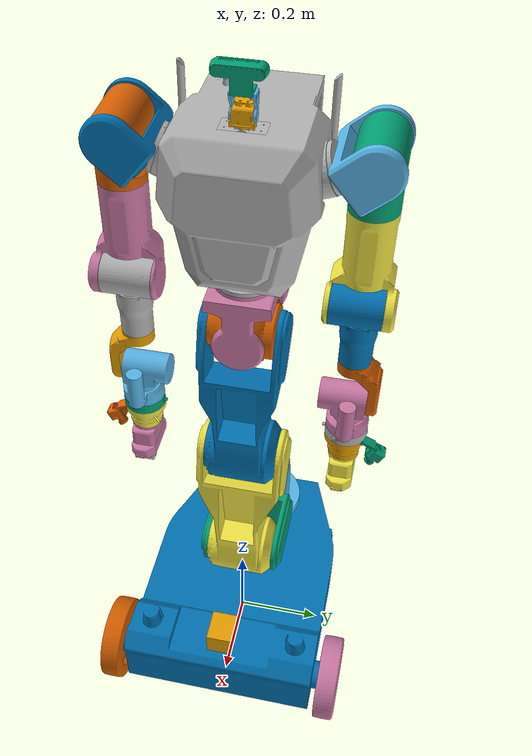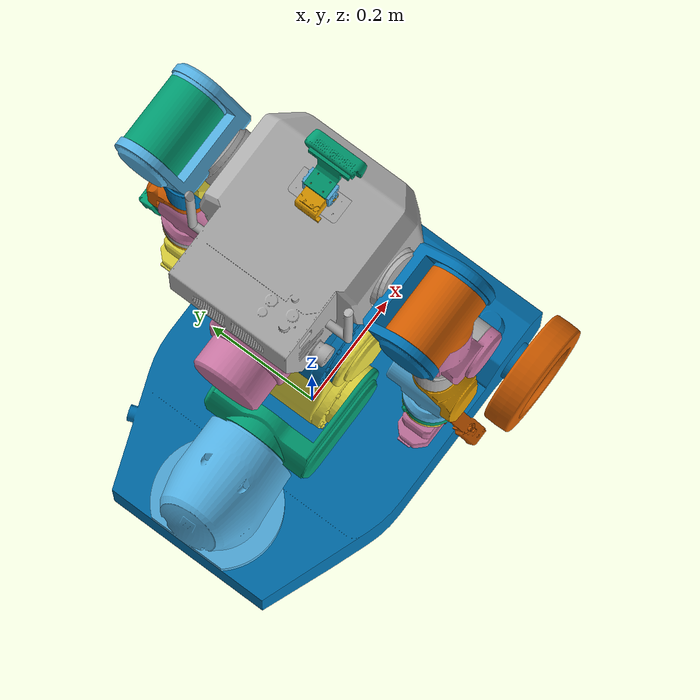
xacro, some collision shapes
<?xml version="1.0"?>
<robot xmlns:xacro="http://www.ros.org/wiki/xacro" name="rby1">

  <!-- Add base (floating, actuated wheels). -->
  <xacro:include filename="rby1_base_holonomic.xacro"/>

  <!-- Add torso and up. -->
  <xacro:include filename="rby1_torso.xacro"/>
  <joint name="base_torso_weld" type="fixed">
    <parent link="torso_mount"/>
    <child link="link_torso_base"/>
    <origin xyz="0 0 0" rpy="0 0 0"/>
  </joint>

  <xacro:include filename="rby1_left_arm.xacro"/>
  <joint name="torso_left_arm_weld" type="fixed">
    <parent link="link_torso_5"/>
    <child link="link_left_arm_base"/>
    <origin xyz="0 0 0" rpy="0 0 0"/>
  </joint>

  <xacro:include filename="rby1_right_arm.xacro"/>
  <joint name="torso_right_arm_weld" type="fixed">
    <parent link="link_torso_5"/>
    <child link="link_right_arm_base"/>
    <origin xyz="0 0 0" rpy="0 0 0"/>
  </joint>

  <xacro:include filename="rby1_head.xacro"/>
  <joint name="torso_head_weld" type="fixed">
    <parent link="link_torso_5"/>
    <child link="link_head_base"/>
    <origin xyz="0 0 0" rpy="0 0 0"/>
  </joint>

  <!-- Add grippers. -->
  <xacro:include filename="rby1_gripper.xacro"/>

  <!-- left_gripper welded to left_arm::ee_left -->
  <xacro:rby1_gripper prefix="left_" parent_link="ee_left"/>

  <!-- right_gripper welded to right_arm::ee_right -->
  <xacro:rby1_gripper prefix="right_" parent_link="ee_right"/>

</robot>

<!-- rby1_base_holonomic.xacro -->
<robot xmlns:xacro="http://www.ros.org/wiki/xacro" name="rby1_base_holonomic">

  <xacro:arg name="mesh_root" default="ruby/rby1_description_drake/meshes"/>
  <xacro:property name="mesh_dir" value="$(arg mesh_root)"/>

  <!-- Root of the kinematic tree that the floating base joints hang off of. -->
  <link name="world"/>

  <!-- Links -->

  <link name="base_x"/>
  <link name="base_y"/>
  <link name="base_z"/>

  <link name="base">
    <inertial>
      <mass value="60.08042639"/>
      <origin rpy="0 0 0" xyz="-0.06157942 -0.00142271 0.13513861"/>
      <inertia ixx="1.37742174" ixy="0.02521789" ixz="0.18565467" iyy="2.99386515" iyz="-0.00641869"
        izz="3.76085052"/>
    </inertial>

    <visual>
      <origin xyz="0 0 0" rpy="1.57079632679 0 0"/>
      <geometry>
        <mesh filename="${mesh_dir}/BASE.obj"/>
      </geometry>
    </visual>

    <!-- Front axle area -->
    <collision>
      <origin xyz="0.23 0.175 0.13" rpy="0 0 0"/>
      <geometry>
        <sphere radius="0.1"/>
      </geometry>
    </collision>
    <collision>
      <origin xyz="0.23 0.075 0.125" rpy="0 0 0"/>
      <geometry>
        <sphere radius="0.1"/>
      </geometry>
    </collision>
    <collision>
      <origin xyz="0.23 0 0.125" rpy="0 0 0"/>
      <geometry>
        <sphere radius="0.1"/>
      </geometry>
    </collision>
    <collision>
      <origin xyz="0.23 -0.075 0.125" rpy="0 0 0"/>
      <geometry>
        <sphere radius="0.1"/>
      </geometry>
    </collision>
    <collision>
      <origin xyz="0.23 -0.175 0.13" rpy="0 0 0"/>
      <geometry>
        <sphere radius="0.1"/>
      </geometry>
    </collision>

    <!-- Lidars -->
    <collision>
      <origin xyz="0.225 0.1725 0.24" rpy="0 0 0"/>
      <geometry>
        <sphere radius="0.03"/>
      </geometry>
    </collision>
    <collision>
      <origin xyz="0.225 -0.1725 0.24" rpy="0 0 0"/>
      <geometry>
        <sphere radius="0.03"/>
      </geometry>
    </collision>

    <!-- Mid/rear body -->
    <collision>
      <origin xyz="0.12 0.175 0.11" rpy="0 0 0"/>
      <geometry>
        <sphere radius="0.08"/>
      </geometry>
    </collision>
    <collision>
      <origin xyz="0.12 -0.175 0.11" rpy="0 0 0"/>
      <geometry>
        <sphere radius="0.08"/>
      </geometry>
    </collision>

    <collision>
      <origin xyz="0.01 0.175 0.11" rpy="0 0 0"/>
      <geometry>
        <sphere radius="0.08"/>
      </geometry>
    </collision>
    <collision>
      <origin xyz="0.01 -0.175 0.11" rpy="0 0 0"/>
      <geometry>
        <sphere radius="0.08"/>
      </geometry>
    </collision>

    <collision>
      <origin xyz="-0.1 0.175 0.11" rpy="0 0 0"/>
      <geometry>
        <sphere radius="0.08"/>
      </geometry>
    </collision>
    <collision>
      <origin xyz="-0.1 -0.175 0.11" rpy="0 0 0"/>
      <geometry>
        <sphere radius="0.08"/>
      </geometry>
    </collision>

    <collision>
      <origin xyz="-0.2 0.15 0.11" rpy="0 0 0"/>
      <geometry>
        <sphere radius="0.08"/>
      </geometry>
    </collision>
    <collision>
      <origin xyz="-0.2 -0.15 0.11" rpy="0 0 0"/>
      <geometry>
        <sphere radius="0.08"/>
      </geometry>
    </collision>

    <collision>
      <origin xyz="-0.28 0.12 0.11" rpy="0 0 0"/>
      <geometry>
        <sphere radius="0.08"/>
      </geometry>
    </collision>
    <collision>
      <origin xyz="-0.28 0.04 0.11" rpy="0 0 0"/>
      <geometry>
        <sphere radius="0.08"/>
      </geometry>
    </collision>
    <collision>
      <origin xyz="-0.28 -0.04 0.11" rpy="0 0 0"/>
      <geometry>
        <sphere radius="0.08"/>
      </geometry>
    </collision>
    <collision>
      <origin xyz="-0.28 -0.12 0.11" rpy="0 0 0"/>
      <geometry>
        <sphere radius="0.08"/>
      </geometry>
    </collision>
  </link>

  <link name="wheel_r">
    <inertial>
      <mass value="1.37783736"/>
      <origin rpy="0 0 0" xyz="0.0 -0.00073938 0.0"/>
      <inertia ixx="0.00426657" ixy="0.0" ixz="0.0" iyy="0.00811815" iyz="0.0" izz="0.00426657"/>
    </inertial>

    <visual>
      <origin xyz="0 0 0" rpy="1.57079632679 0 0"/>
      <geometry>
        <mesh filename="${mesh_dir}/WHEEL.obj"/>
      </geometry>
    </visual>

    <collision>
      <origin xyz="0 0 0" rpy="0 0 0"/>
      <geometry>
        <sphere radius="0.1"/>
      </geometry>
    </collision>
  </link>

  <link name="wheel_l">
    <inertial>
      <mass value="1.37783736"/>
      <origin rpy="0 0 0" xyz="0.0 0.00073938 0.0"/>
      <inertia ixx="0.00426657" ixy="0.0" ixz="0.0" iyy="0.00811815" iyz="0.0" izz="0.00426657"/>
    </inertial>

    <visual>
      <origin xyz="0 0 0" rpy="1.57079632679 0 0"/>
      <geometry>
        <mesh filename="${mesh_dir}/WHEEL.obj"/>
      </geometry>
    </visual>

    <collision>
      <origin xyz="0 0 0" rpy="0 0 0"/>
      <geometry>
        <sphere radius="0.1"/>
      </geometry>
    </collision>
  </link>

  <link name="torso_mount"/>

  <!-- BEGIN: Mid-360 lidar near the front of the base -->
  <link name="lidar_mid360">
    <visual>
      <origin xyz="-0.018 0 0.015" rpy="1.5708 0 0"/>
      <geometry>
        <mesh filename="${mesh_dir}/mid-360.obj"/>
      </geometry>
    </visual>
    <collision>
      <origin xyz="-0.018 0 0.015" rpy="0 0 0"/>
      <geometry>
        <box size="0.073 0.060 0.065"/>
      </geometry>
    </collision>
  </link>
  <!-- END: Mid-360 lidar -->

  <!-- Joints -->

  <!-- Floating base: 2 prismatic (x, y) + 1 fixed (z) + 1 continuous (yaw) -->
  <joint name="base_x" type="prismatic">
    <parent link="world"/>
    <child link="base_x"/>
    <axis xyz="1 0 0"/>
    <limit effort="1000" lower="-1000" upper="1000" velocity="1000.00"/>
  </joint>
  <joint name="base_y" type="prismatic">
    <parent link="base_x"/>
    <child link="base_y"/>
    <axis xyz="0 1 0"/>
    <limit effort="1000" lower="-1000" upper="1000" velocity="1000.00"/>
  </joint>
  <joint name="base_z" type="fixed">
    <origin rpy="0 0 0" xyz="0 0 0"/>
    <parent link="base_y"/>
    <child link="base_z"/>
    <axis xyz="0 0 1"/>
  </joint>
  <joint name="base_rz" type="continuous">
    <parent link="base_z"/>
    <child link="base"/>
    <axis xyz="0 0 1"/>
  </joint>

  <transmission name="base_x_transmission">
    <type>transmission_interface/SimpleTransmission</type>
    <joint name="base_x">
      <hardwareInterface>PositionJointInterface</hardwareInterface>
    </joint>
    <actuator name="base_x_motor">
      <hardwareInterface>PositionJointInterface</hardwareInterface>
      <mechanicalReduction>1</mechanicalReduction>
    </actuator>
  </transmission>
  <transmission name="base_y_transmission">
    <type>transmission_interface/SimpleTransmission</type>
    <joint name="base_y">
      <hardwareInterface>PositionJointInterface</hardwareInterface>
    </joint>
    <actuator name="base_y_motor">
      <hardwareInterface>PositionJointInterface</hardwareInterface>
      <mechanicalReduction>1</mechanicalReduction>
    </actuator>
  </transmission>
  <transmission name="base_rz_transmission">
    <type>transmission_interface/SimpleTransmission</type>
    <joint name="base_rz">
      <hardwareInterface>PositionJointInterface</hardwareInterface>
    </joint>
    <actuator name="base_rz_motor">
      <hardwareInterface>PositionJointInterface</hardwareInterface>
      <mechanicalReduction>1</mechanicalReduction>
    </actuator>
  </transmission>

  <joint name="right_wheel" type="fixed">
    <parent link="base"/>
    <child link="wheel_r"/>
    <origin rpy="0.0 0.0 0.0" xyz="0.228 -0.265 0.1"/>
    <axis xyz="0 1 0"/>
  </joint>

  <joint name="left_wheel" type="fixed">
    <parent link="base"/>
    <child link="wheel_l"/>
    <origin rpy="0.0 0.0 0.0" xyz="0.228 0.265 0.1"/>
    <axis xyz="0 1 0"/>
  </joint>

  <joint name="torso_mount" type="fixed">
    <parent link="base"/>
    <child link="torso_mount"/>
    <origin rpy="0.0 0.0 0.0" xyz="-0.247 0.0 0.168"/>
  </joint>

  <joint name="lidar_mid360_mount" type="fixed">
    <parent link="base"/>
    <child link="lidar_mid360"/>
    <origin rpy="0.0 0.0 0.0" xyz="0.25 0.0 0.2"/>
  </joint>

</robot>

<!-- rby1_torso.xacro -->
<!-- Direct xacro translation of torso.urdf. -->
<robot xmlns:xacro="http://www.ros.org/wiki/xacro" name="rby1_torso">

  <xacro:arg name="mesh_root" default="ruby/rby1_description_drake/meshes"/>
  <xacro:property name="mesh_dir" value="$(arg mesh_root)"/>

  <!-- Links -->

  <link name="link_torso_base">
    <visual>
      <origin xyz="0 0 0" rpy="1.57079632679 0 0"/>
      <geometry>
        <mesh filename="${mesh_dir}/LINK_0.obj"/>
      </geometry>
    </visual>

    <collision>
      <origin xyz="0.047 0 0.112" rpy="0 0 0"/>
      <geometry>
        <sphere radius="0.09"/>
      </geometry>
    </collision>
    <collision>
      <origin xyz="0.007 0 0.022" rpy="0 0 0"/>
      <geometry>
        <sphere radius="0.11"/>
      </geometry>
    </collision>
    <collision>
      <origin xyz="-0.013 0 0.112" rpy="0 0 0"/>
      <geometry>
        <sphere radius="0.09"/>
      </geometry>
    </collision>
  </link>

  <link name="link_torso_0">
    <inertial>
      <mass value="2.24282123"/>
      <origin rpy="0 0 0" xyz="-0.08848415 0.00021367 0.00000046"/>
      <inertia ixx="0.01413496" ixy="0.00092982" ixz="-0.00000010" iyy="0.01005357"
        iyz="-0.00000008" izz="0.01892525"/>
    </inertial>

    <visual>
      <origin xyz="0 0 0" rpy="1.57079632679 0 0"/>
      <geometry>
        <mesh filename="${mesh_dir}/LINK_1.obj"/>
      </geometry>
    </visual>

    <collision>
      <origin xyz="-0.1 0.045 0" rpy="0 0 0"/>
      <geometry>
        <sphere radius="0.08"/>
      </geometry>
    </collision>
    <collision>
      <origin xyz="-0.1 -0.045 0" rpy="0 0 0"/>
      <geometry>
        <sphere radius="0.08"/>
      </geometry>
    </collision>
  </link>

  <link name="link_torso_1">
    <inertial>
      <mass value="9.72162676"/>
      <origin rpy="0 0 0" xyz="0.00728955 -0.01728522 0.06911380"/>
      <inertia ixx="0.14862640" ixy="-0.00142621" ixz="-0.00951385" iyy="0.13854733"
        iyz="-0.00975351" izz="0.02912982"/>
    </inertial>

    <visual>
      <origin xyz="0 0 0" rpy="1.57079632679 0 0"/>
      <geometry>
        <mesh filename="${mesh_dir}/LINK_2.obj"/>
      </geometry>
    </visual>

    <collision>
      <origin xyz="0 0 0" rpy="0 0 0"/>
      <geometry>
        <sphere radius="0.11"/>
      </geometry>
    </collision>

    <collision>
      <origin xyz="0.015 0 0.08" rpy="0 0 0"/>
      <geometry>
        <sphere radius="0.085"/>
      </geometry>
    </collision>

    <collision>
      <origin xyz="0.025 0.03 0.15" rpy="0 0 0"/>
      <geometry>
        <sphere radius="0.07"/>
      </geometry>
    </collision>
    <collision>
      <origin xyz="0.025 -0.03 0.15" rpy="0 0 0"/>
      <geometry>
        <sphere radius="0.07"/>
      </geometry>
    </collision>

    <collision>
      <origin xyz="0.025 0.04 0.22" rpy="0 0 0"/>
      <geometry>
        <sphere radius="0.07"/>
      </geometry>
    </collision>
    <collision>
      <origin xyz="0.025 -0.04 0.22" rpy="0 0 0"/>
      <geometry>
        <sphere radius="0.07"/>
      </geometry>
    </collision>

    <collision>
      <origin xyz="0.03 0.05 0.28" rpy="0 0 0"/>
      <geometry>
        <sphere radius="0.06"/>
      </geometry>
    </collision>
    <collision>
      <origin xyz="0.03 0 0.28" rpy="0 0 0"/>
      <geometry>
        <sphere radius="0.06"/>
      </geometry>
    </collision>
    <collision>
      <origin xyz="0.03 -0.05 0.28" rpy="0 0 0"/>
      <geometry>
        <sphere radius="0.06"/>
      </geometry>
    </collision>

    <collision>
      <origin xyz="0 0.05 0.35" rpy="0 0 0"/>
      <geometry>
        <sphere radius="0.08"/>
      </geometry>
    </collision>
    <collision>
      <origin xyz="0 -0.05 0.35" rpy="0 0 0"/>
      <geometry>
        <sphere radius="0.08"/>
      </geometry>
    </collision>
  </link>

  <link name="link_torso_2">
    <inertial>
      <mass value="9.21691850"/>
      <origin rpy="0 0 0" xyz="0.00653835 -0.01769536 0.05636582"/>
      <inertia ixx="0.12162270" ixy="-0.00127910" ixz="-0.00831678" iyy="0.11589190"
        iyz="-0.00873271" izz="0.03094484"/>
    </inertial>

    <visual>
      <origin xyz="0 0 0" rpy="1.57079632679 0 0"/>
      <geometry>
        <mesh filename="${mesh_dir}/LINK_3.obj"/>
      </geometry>
    </visual>

    <collision>
      <origin xyz="0 0 0" rpy="0 0 0"/>
      <geometry>
        <sphere radius="0.09"/>
      </geometry>
    </collision>

    <collision>
      <origin xyz="0.015 0 0.08" rpy="0 0 0"/>
      <geometry>
        <sphere radius="0.085"/>
      </geometry>
    </collision>

    <collision>
      <origin xyz="0.025 0.03 0.15" rpy="0 0 0"/>
      <geometry>
        <sphere radius="0.07"/>
      </geometry>
    </collision>
    <collision>
      <origin xyz="0.025 -0.03 0.15" rpy="0 0 0"/>
      <geometry>
        <sphere radius="0.07"/>
      </geometry>
    </collision>

    <collision>
      <origin xyz="0.025 0.04 0.22" rpy="0 0 0"/>
      <geometry>
        <sphere radius="0.07"/>
      </geometry>
    </collision>
    <collision>
      <origin xyz="0.025 -0.04 0.22" rpy="0 0 0"/>
      <geometry>
        <sphere radius="0.07"/>
      </geometry>
    </collision>

    <collision>
      <origin xyz="0.03 0.05 0.28" rpy="0 0 0"/>
      <geometry>
        <sphere radius="0.06"/>
      </geometry>
    </collision>
    <collision>
      <origin xyz="0.03 0 0.28" rpy="0 0 0"/>
      <geometry>
        <sphere radius="0.06"/>
      </geometry>
    </collision>
    <collision>
      <origin xyz="0.03 -0.05 0.28" rpy="0 0 0"/>
      <geometry>
        <sphere radius="0.06"/>
      </geometry>
    </collision>

    <collision>
      <origin xyz="0.005 0.05 0.35" rpy="0 0 0"/>
      <geometry>
        <sphere radius="0.06"/>
      </geometry>
    </collision>
    <collision>
      <origin xyz="0.005 -0.05 0.35" rpy="0 0 0"/>
      <geometry>
        <sphere radius="0.06"/>
      </geometry>
    </collision>
  </link>

  <link name="link_torso_3">
    <inertial>
      <mass value="4.18679196"/>
      <origin rpy="0 0 0" xyz="-0.00574156 -0.01725975 0.00005610"/>
      <inertia ixx="0.00849870" ixy="0.00040861" ixz="-0.00000263" iyy="0.00929513"
        iyz="-0.00001243" izz="0.00955442"/>
    </inertial>

    <visual>
      <origin xyz="0 0 0" rpy="1.57079632679 0 0"/>
      <geometry>
        <mesh filename="${mesh_dir}/LINK_4.obj"/>
      </geometry>
    </visual>

    <!-- Note: no collision geometry, as this is entirely covered by other links. -->
  </link>

  <link name="link_torso_4">
    <inertial>
      <mass value="4.45566276"/>
      <origin rpy="0 0 0" xyz="-0.09097095 0.00005085 0.02601950"/>
      <inertia ixx="0.01545991" ixy="0.00001883" ixz="-0.00780349" iyy="0.02550888" iyz="0.00000715"
        izz="0.01952563"/>
    </inertial>

    <visual>
      <origin xyz="0 0 0" rpy="1.57079632679 0 0"/>
      <geometry>
        <mesh filename="${mesh_dir}/LINK_5.obj"/>
      </geometry>
    </visual>

    <collision>
      <origin xyz="0 0 0.03" rpy="0 0 0"/>
      <geometry>
        <sphere radius="0.105"/>
      </geometry>
    </collision>
    <collision>
      <origin xyz="-0.05 0 0.03" rpy="0 0 0"/>
      <geometry>
        <sphere radius="0.1"/>
      </geometry>
    </collision>
    <collision>
      <origin xyz="-0.1 0 0.03" rpy="0 0 0"/>
      <geometry>
        <sphere radius="0.1"/>
      </geometry>
    </collision>
    <collision>
      <origin xyz="-0.17 0 0" rpy="0 0 0"/>
      <geometry>
        <sphere radius="0.07"/>
      </geometry>
    </collision>
  </link>

  <link name="link_torso_5">
    <!-- Estimated inertia from Rainbow mass estimate: 32kg uniform-density sphere, r=0.15. -->
    <inertial>
      <mass value="32.0"/>
      <origin rpy="0 0 0" xyz="-0.01338376 0.00025621 -0.03272487"/>
      <inertia ixx="0.288" ixy="0.0" ixz="0.0" iyy="0.288" iyz="0.0" izz="0.288"/>
    </inertial>

    <visual>
      <origin xyz="0 0 0" rpy="1.57079632679 0 0"/>
      <geometry>
        <mesh filename="${mesh_dir}/LINK_6.obj"/>
      </geometry>
    </visual>

    <collision>
      <origin xyz="0 0 0.025" rpy="0 0 0"/>
      <geometry>
        <sphere radius="0.16"/>
      </geometry>
    </collision>
    <collision>
      <origin xyz="-0.01 0 -0.1" rpy="0 0 0"/>
      <geometry>
        <sphere radius="0.13"/>
      </geometry>
    </collision>

    <collision>
      <origin xyz="-0.12 0 0.06" rpy="0 0 0"/>
      <geometry>
        <sphere radius="0.13"/>
      </geometry>
    </collision>
    <collision>
      <origin xyz="-0.1 0 -0.01" rpy="0 0 0"/>
      <geometry>
        <sphere radius="0.13"/>
      </geometry>
    </collision>
    <collision>
      <origin xyz="-0.09 0 -0.08" rpy="0 0 0"/>
      <geometry>
        <sphere radius="0.12"/>
      </geometry>
    </collision>
  </link>

  <!-- Joints -->

  <joint name="torso_0" type="revolute">
    <parent link="link_torso_base"/>
    <child link="link_torso_0"/>
    <origin rpy="0.0 0.0 0.0" xyz="0.247 0.0 0.1125"/>
    <axis xyz="1 0 0"/>
    <limit effort="1000.0" lower="-0.34906585" upper="0.34906585" velocity="3.14159265"/>
  </joint>

  <joint name="torso_1" type="revolute">
    <parent link="link_torso_0"/>
    <child link="link_torso_1"/>
    <origin rpy="0.0 0.0 0.0" xyz="0.0 0.0 0.0"/>
    <axis xyz="0 1 0"/>
    <limit effort="1000.0" lower="-1.04719755" upper="1.52173048" velocity="3.14159265"/>
  </joint>

  <joint name="torso_2" type="revolute">
    <parent link="link_torso_1"/>
    <child link="link_torso_2"/>
    <origin rpy="0.0 0.0 0.0" xyz="0.0 0.0 0.350"/>
    <axis xyz="0 1 0"/>
    <limit effort="1000.0" lower="-2.478367" upper="1.570796" velocity="3.14159265"/>
  </joint>

  <joint name="torso_3" type="revolute">
    <parent link="link_torso_2"/>
    <child link="link_torso_3"/>
    <origin rpy="0.0 0.0 0.0" xyz="0.0 0.0 0.350"/>
    <axis xyz="0 1 0"/>
    <limit effort="1000.0" lower="-0.78539816" upper="1.57079633" velocity="3.14159265"/>
  </joint>

  <joint name="torso_4" type="revolute">
    <parent link="link_torso_3"/>
    <child link="link_torso_4"/>
    <origin rpy="0.0 0.0 0.0" xyz="0.0 0.0 0.0"/>
    <axis xyz="1 0 0"/>
    <limit effort="1000.0" lower="-0.52359878" upper="0.52359878" velocity="3.14159265"/>
  </joint>

  <joint name="torso_5" type="revolute">
    <parent link="link_torso_4"/>
    <child link="link_torso_5"/>
    <origin rpy="0.0 0.0 0.0" xyz="0.0 0.0 0.309426548461"/>
    <axis xyz="0 0 1"/>
    <limit effort="1000.0" lower="-1.57079633" upper="1.57079633" velocity="3.14159265"/>
  </joint>

  <!-- Transmissions -->

  <transmission name="torso_0_transmission">
    <type>transmission_interface/SimpleTransmission</type>
    <joint name="torso_0">
      <hardwareInterface>PositionJointInterface</hardwareInterface>
    </joint>
    <actuator name="torso_0_motor">
      <hardwareInterface>PositionJointInterface</hardwareInterface>
      <mechanicalReduction>1</mechanicalReduction>
    </actuator>
  </transmission>

  <transmission name="torso_1_transmission">
    <type>transmission_interface/SimpleTransmission</type>
    <joint name="torso_1">
      <hardwareInterface>PositionJointInterface</hardwareInterface>
    </joint>
    <actuator name="torso_1_motor">
      <hardwareInterface>PositionJointInterface</hardwareInterface>
      <mechanicalReduction>1</mechanicalReduction>
    </actuator>
  </transmission>

  <transmission name="torso_2_transmission">
    <type>transmission_interface/SimpleTransmission</type>
    <joint name="torso_2">
      <hardwareInterface>PositionJointInterface</hardwareInterface>
    </joint>
    <actuator name="torso_2_motor">
      <hardwareInterface>PositionJointInterface</hardwareInterface>
      <mechanicalReduction>1</mechanicalReduction>
    </actuator>
  </transmission>

  <transmission name="torso_3_transmission">
    <type>transmission_interface/SimpleTransmission</type>
    <joint name="torso_3">
      <hardwareInterface>PositionJointInterface</hardwareInterface>
    </joint>
    <actuator name="torso_3_motor">
      <hardwareInterface>PositionJointInterface</hardwareInterface>
      <mechanicalReduction>1</mechanicalReduction>
    </actuator>
  </transmission>

  <transmission name="torso_4_transmission">
    <type>transmission_interface/SimpleTransmission</type>
    <joint name="torso_4">
      <hardwareInterface>PositionJointInterface</hardwareInterface>
    </joint>
    <actuator name="torso_4_motor">
      <hardwareInterface>PositionJointInterface</hardwareInterface>
      <mechanicalReduction>1</mechanicalReduction>
    </actuator>
  </transmission>

  <transmission name="torso_5_transmission">
    <type>transmission_interface/SimpleTransmission</type>
    <joint name="torso_5">
      <hardwareInterface>PositionJointInterface</hardwareInterface>
    </joint>
    <actuator name="torso_5_motor">
      <hardwareInterface>PositionJointInterface</hardwareInterface>
      <mechanicalReduction>1</mechanicalReduction>
    </actuator>
  </transmission>

</robot>

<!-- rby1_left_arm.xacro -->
<!-- Direct xacro translation of left_arm.urdf. -->
<robot xmlns:xacro="http://www.ros.org/wiki/xacro" name="rby1_left_arm">

  <xacro:arg name="mesh_root" default="ruby/rby1_description_drake/meshes"/>
  <xacro:property name="mesh_dir" value="$(arg mesh_root)"/>

  <!-- Links -->

  <link name="link_left_arm_base"/>

  <link name="link_left_arm_0">
    <inertial>
      <mass value="1.26164242"/>
      <origin rpy="0 0 0" xyz="-0.00316662 -0.03437151 0.00000242"/>
      <inertia ixx="0.00230624" ixy="-0.00039022" ixz="0.00000269" iyy="0.00426418" iyz="0.00000108"
        izz="0.00432159"/>
    </inertial>

    <visual>
      <origin xyz="0 0 0" rpy="1.57079632679 0 0"/>
      <geometry>
        <mesh filename="${mesh_dir}/LINK_14.obj"/>
      </geometry>
    </visual>

    <collision>
      <origin xyz="0.025 -0.018 -0.005" rpy="0 0 0"/>
      <geometry>
        <sphere radius="0.075"/>
      </geometry>
    </collision>
    <collision>
      <origin xyz="-0.015 -0.018 -0.005" rpy="0 0 0"/>
      <geometry>
        <sphere radius="0.075"/>
      </geometry>
    </collision>
    <collision>
      <origin xyz="-0.05 -0.018 -0.005" rpy="0 0 0"/>
      <geometry>
        <sphere radius="0.075"/>
      </geometry>
    </collision>
  </link>

  <link name="link_left_arm_1">
    <inertial>
      <mass value="1.88138658"/>
      <origin rpy="0 0 0" xyz="-0.00183470 0.00040596 -0.01008733"/>
      <inertia ixx="0.00295838" ixy="-0.00001176" ixz="0.00006949" iyy="0.00355208" iyz="0.00004467"
        izz="0.00230558"/>
    </inertial>

    <visual>
      <origin xyz="0 0 0" rpy="1.57079632679 0 0"/>
      <geometry>
        <mesh filename="${mesh_dir}/LINK_15.obj"/>
      </geometry>
    </visual>

    <collision>
      <origin xyz="0 0 -0.07" rpy="0 0 0"/>
      <geometry>
        <sphere radius="0.05"/>
      </geometry>
    </collision>
  </link>

  <link name="link_left_arm_2">
    <inertial>
      <mass value="2.35634437"/>
      <origin rpy="0 0 0" xyz="0.00066086 -0.00038583 -0.15742972"/>
      <inertia ixx="0.00842712" ixy="0.00000247" ixz="0.00036948" iyy="0.00802311" iyz="-0.00006550"
        izz="0.00295678"/>
    </inertial>

    <visual>
      <origin xyz="0 0 0" rpy="1.57079632679 0 0"/>
      <geometry>
        <mesh filename="${mesh_dir}/LINK_16.obj"/>
      </geometry>
    </visual>

    <collision>
      <origin xyz="0 0 -0.11" rpy="0 0 0"/>
      <geometry>
        <sphere radius="0.05"/>
      </geometry>
    </collision>
    <collision>
      <origin xyz="0 0 -0.15" rpy="0 0 0"/>
      <geometry>
        <sphere radius="0.05"/>
      </geometry>
    </collision>
    <collision>
      <origin xyz="0 0 -0.19" rpy="0 0 0"/>
      <geometry>
        <sphere radius="0.05"/>
      </geometry>
    </collision>
    <collision>
      <origin xyz="0 0 -0.23" rpy="0 0 0"/>
      <geometry>
        <sphere radius="0.05"/>
      </geometry>
    </collision>

    <collision>
      <origin xyz="0 0.02 -0.24" rpy="0 0 0"/>
      <geometry>
        <sphere radius="0.05"/>
      </geometry>
    </collision>
    <collision>
      <origin xyz="0 -0.022 -0.24" rpy="0 0 0"/>
      <geometry>
        <sphere radius="0.05"/>
      </geometry>
    </collision>

    <collision>
      <origin xyz="0.031 0.04 -0.275" rpy="0 0 0"/>
      <geometry>
        <sphere radius="0.045"/>
      </geometry>
    </collision>
    <collision>
      <origin xyz="0.031 -0.042 -0.275" rpy="0 0 0"/>
      <geometry>
        <sphere radius="0.045"/>
      </geometry>
    </collision>
  </link>

  <link name="link_left_arm_3">
    <inertial>
      <mass value="2.00905891"/>
      <origin rpy="0 0 0" xyz="-0.01565298 0.00793126 -0.04997943"/>
      <inertia ixx="0.00756474" ixy="-0.00026771" ixz="-0.00155419" iyy="0.00772758"
        iyz="-0.00084364" izz="0.00199754"/>
    </inertial>

    <visual>
      <origin xyz="0 0 0" rpy="1.57079632679 0 0"/>
      <geometry>
        <mesh filename="${mesh_dir}/LINK_17.obj"/>
      </geometry>
    </visual>

    <collision>
      <origin xyz="-0.015 0 0" rpy="0 0 0"/>
      <geometry>
        <sphere radius="0.06"/>
      </geometry>
    </collision>

    <collision>
      <origin xyz="-0.031 0 -0.06" rpy="0 0 0"/>
      <geometry>
        <sphere radius="0.04"/>
      </geometry>
    </collision>
    <collision>
      <origin xyz="-0.031 0 -0.09" rpy="0 0 0"/>
      <geometry>
        <sphere radius="0.04"/>
      </geometry>
    </collision>
    <collision>
      <origin xyz="-0.031 0 -0.132" rpy="0 0 0"/>
      <geometry>
        <sphere radius="0.04"/>
      </geometry>
    </collision>
  </link>

  <link name="link_left_arm_4">
    <inertial>
      <mass value="0.42508710"/>
      <origin rpy="0 0 0" xyz="0.00000011 0.02696036 0.06182110"/>
      <inertia ixx="0.00082466" ixy="0.0" ixz="0.0" iyy="0.00075398" iyz="0.00025338"
        izz="0.00039794"/>
    </inertial>

    <visual>
      <origin xyz="0 0 0" rpy="1.57079632679 0 0"/>
      <geometry>
        <mesh filename="${mesh_dir}/LINK_18.obj"/>
      </geometry>
    </visual>

    <collision>
      <origin xyz="0 0 0.08" rpy="0 0 0"/>
      <geometry>
        <sphere radius="0.04"/>
      </geometry>
    </collision>

    <collision>
      <origin xyz="0 0.027 0.07" rpy="0 0 0"/>
      <geometry>
        <sphere radius="0.04"/>
      </geometry>
    </collision>

    <collision>
      <origin xyz="0 0.032 0.05" rpy="0 0 0"/>
      <geometry>
        <sphere radius="0.04"/>
      </geometry>
    </collision>
    <collision>
      <origin xyz="0 0.032 0.025" rpy="0 0 0"/>
      <geometry>
        <sphere radius="0.04"/>
      </geometry>
    </collision>
    <collision>
      <origin xyz="0 0.032 0" rpy="0 0 0"/>
      <geometry>
        <sphere radius="0.04"/>
      </geometry>
    </collision>
  </link>

  <link name="link_left_arm_5">
    <inertial>
      <mass value="1.44264795"/>
      <origin rpy="0 0 0" xyz="0.00340082 0.00576824 -0.02507309"/>
      <inertia ixx="0.00233577" ixy="0.00003048" ixz="-0.00001191" iyy="0.00232580"
        iyz="-0.00019491" izz="0.00138375"/>
    </inertial>

    <visual>
      <origin xyz="0 0 0" rpy="1.57079632679 0 0"/>
      <geometry>
        <mesh filename="${mesh_dir}/LINK_19.obj"/>
      </geometry>
    </visual>

    <collision>
      <origin xyz="0.02 0 -0.021" rpy="0 0 0"/>
      <geometry>
        <sphere radius="0.065"/>
      </geometry>
    </collision>

    <collision>
      <origin xyz="0 -0.04 0" rpy="0 0 0"/>
      <geometry>
        <sphere radius="0.04"/>
      </geometry>
    </collision>

    <collision>
      <origin xyz="0 0 -0.057" rpy="0 0 0"/>
      <geometry>
        <sphere radius="0.05"/>
      </geometry>
    </collision>
  </link>

  <link name="link_left_arm_6">
    <inertial>
      <mass value="0.21137279"/>
      <origin rpy="0 0 0" xyz="-0.00066810 0.00031708 -0.09636043"/>
      <inertia ixx="0.00013511" ixy="-0.00000242" ixz="0.00000102" iyy="0.00014453"
        iyz="-0.00000094" izz="0.00025431"/>
    </inertial>

    <visual>
      <origin xyz="0 0 0" rpy="1.57079632679 0 0"/>
      <geometry>
        <mesh filename="${mesh_dir}/LINK_20.obj"/>
      </geometry>
    </visual>

    <collision>
      <origin xyz="0 0 -0.1" rpy="0 0 0"/>
      <geometry>
        <sphere radius="0.05"/>
      </geometry>
    </collision>
  </link>

  <link name="FT_sensor_L">
    <inertial>
      <mass value="0.49078507"/>
      <origin rpy="0 0 0" xyz="-0.00010423 -0.00108019 -0.01880676"/>
      <inertia ixx="0.00028587" ixy="-0.00000146" ixz="0.00000026" iyy="0.00030459" iyz="0.00000772"
        izz="0.00036377"/>
    </inertial>

    <visual>
      <origin xyz="0 0 0" rpy="1.57079632679 0 0"/>
      <geometry>
        <mesh filename="${mesh_dir}/FT_SENSOR_L.obj"/>
      </geometry>
    </visual>

    <collision>
      <origin xyz="0 0 -0.0275" rpy="0 0 0"/>
      <geometry>
        <sphere radius="0.04"/>
      </geometry>
    </collision>
  </link>

  <link name="ee_left"/>

  <!-- BEGIN: Wrist camera (RealSense), mounted on the FT sensor -->
  <link name="link_left_arm_camera">
    <visual>
      <origin xyz="0 .062 -0.038" rpy="0 0 3.14159"/>
      <geometry>
        <mesh filename="${mesh_dir}/rby1_wrist_camera.obj"/>
      </geometry>
    </visual>
    <!-- Simple primitive for collision, matching the rest of the arm. Tune size/origin to the camera envelope. -->
    <collision>
      <origin xyz="0 .062 -0.038" rpy="0 0 3.14159"/>
      <geometry>
        <box size="0.040 0.056 0.082"/>
      </geometry>
    </collision>
  </link>
  <!-- END: Wrist camera -->

  <!-- Joints -->

  <joint name="left_arm_0" type="revolute">
    <parent link="link_left_arm_base"/>
    <child link="link_left_arm_0"/>
    <origin rpy="0.349065850  0.0 0.0" xyz="0.0 0.220 0.080073452 "/>
    <axis xyz="0 1 0"/>
    <limit effort="1000.0" lower="-2.35619449" upper="2.35619449" velocity="3.14159265"/>
  </joint>

  <joint name="left_arm_1" type="revolute">
    <parent link="link_left_arm_0"/>
    <child link="link_left_arm_1"/>
    <origin rpy="-0.349065850 0.0 0.0" xyz="0.0 0.0 0.0"/>
    <axis xyz="1 0 0"/>
    <limit effort="1000.0" lower="-0.05" upper="3.14159265" velocity="3.14159265"/>
  </joint>

  <joint name="left_arm_2" type="revolute">
    <parent link="link_left_arm_1"/>
    <child link="link_left_arm_2"/>
    <origin rpy="0.0 0.0 0.0" xyz="0.0 0.0 0.0"/>
    <axis xyz="0 0 1"/>
    <limit effort="1000.0" lower="-2.09439510" upper="2.09439510" velocity="3.14159265"/>
  </joint>

  <joint name="left_arm_3" type="revolute">
    <parent link="link_left_arm_2"/>
    <child link="link_left_arm_3"/>
    <origin rpy="0.0 0.0 0.0" xyz="0.031 0.0 -0.276"/>
    <axis xyz="0 1 0"/>
    <limit effort="1000.0" lower="-2.61799388" upper="0.01" velocity="3.14159265"/>
  </joint>

  <joint name="left_arm_4" type="revolute">
    <parent link="link_left_arm_3"/>
    <child link="link_left_arm_4"/>
    <origin rpy="0.0 0.0 0.0" xyz="-0.031 0.0 -0.256"/>
    <axis xyz="0 0 1"/>
    <!-- Reduced from full +-2pi range for camera wires. -->
    <limit effort="1000.0" lower="-3.0" upper="3.0" velocity="3.14159265"/>
  </joint>

  <joint name="left_arm_5" type="revolute">
    <parent link="link_left_arm_4"/>
    <child link="link_left_arm_5"/>
    <origin rpy="0.0 0.0 0.0" xyz="0.0 0.0 0.0"/>
    <axis xyz="0 1 0"/>
    <limit effort="1000.0" lower="-1.74532925" upper="2.00712864" velocity="30.14159265"/>
  </joint>

  <joint name="left_arm_6" type="revolute">
    <parent link="link_left_arm_5"/>
    <child link="link_left_arm_6"/>
    <origin rpy="0.0 0.0 0.0" xyz="0.0 0.0 0.0"/>
    <axis xyz="0 0 1"/>
    <limit effort="1000.0" lower="-2.75" upper="2.75" velocity="3.14159265"/>
  </joint>

  <joint name="tool_left" type="fixed">
    <parent link="link_left_arm_6"/>
    <child link="FT_sensor_L"/>
    <origin rpy="0.0 0.0 0" xyz="0.0 0.0 -0.1087"/>
    <axis xyz="0 0 1"/>
  </joint>

  <joint name="FT_Sensor_END_left" type="fixed">
    <parent link="FT_sensor_L"/>
    <child link="ee_left"/>
    <origin rpy="0.0 0.0 0.0" xyz="0.0 0.0 -0.0461"/>
    <axis xyz="0 0 1"/>
  </joint>

  <!-- BEGIN: Wrist camera mount. -->
  <joint name="left_arm_camera_mount" type="fixed">
    <parent link="FT_sensor_L"/>
    <child link="link_left_arm_camera"/>
    <origin rpy="0.0 0.0 0.0" xyz="0.0 0.0 0.0"/>
    <axis xyz="0 0 1"/>
  </joint>
  <!-- END: Wrist camera mount -->

  <!-- Transmissions -->

  <transmission name="left_arm_0_transmission">
    <type>transmission_interface/SimpleTransmission</type>
    <joint name="left_arm_0">
      <hardwareInterface>PositionJointInterface</hardwareInterface>
    </joint>
    <actuator name="left_arm_0_motor">
      <hardwareInterface>PositionJointInterface</hardwareInterface>
      <mechanicalReduction>1</mechanicalReduction>
    </actuator>
  </transmission>

  <transmission name="left_arm_1_transmission">
    <type>transmission_interface/SimpleTransmission</type>
    <joint name="left_arm_1">
      <hardwareInterface>PositionJointInterface</hardwareInterface>
    </joint>
    <actuator name="left_arm_1_motor">
      <hardwareInterface>PositionJointInterface</hardwareInterface>
      <mechanicalReduction>1</mechanicalReduction>
    </actuator>
  </transmission>

  <transmission name="left_arm_2_transmission">
    <type>transmission_interface/SimpleTransmission</type>
    <joint name="left_arm_2">
      <hardwareInterface>PositionJointInterface</hardwareInterface>
    </joint>
    <actuator name="left_arm_2_motor">
      <hardwareInterface>PositionJointInterface</hardwareInterface>
      <mechanicalReduction>1</mechanicalReduction>
    </actuator>
  </transmission>

  <transmission name="left_arm_3_transmission">
    <type>transmission_interface/SimpleTransmission</type>
    <joint name="left_arm_3">
      <hardwareInterface>PositionJointInterface</hardwareInterface>
    </joint>
    <actuator name="left_arm_3_motor">
      <hardwareInterface>PositionJointInterface</hardwareInterface>
      <mechanicalReduction>1</mechanicalReduction>
    </actuator>
  </transmission>

  <transmission name="left_arm_4_transmission">
    <type>transmission_interface/SimpleTransmission</type>
    <joint name="left_arm_4">
      <hardwareInterface>PositionJointInterface</hardwareInterface>
    </joint>
    <actuator name="left_arm_4_motor">
      <hardwareInterface>PositionJointInterface</hardwareInterface>
      <mechanicalReduction>1</mechanicalReduction>
    </actuator>
  </transmission>

  <transmission name="left_arm_5_transmission">
    <type>transmission_interface/SimpleTransmission</type>
    <joint name="left_arm_5">
      <hardwareInterface>PositionJointInterface</hardwareInterface>
    </joint>
    <actuator name="left_arm_5_motor">
      <hardwareInterface>PositionJointInterface</hardwareInterface>
      <mechanicalReduction>1</mechanicalReduction>
    </actuator>
  </transmission>

  <transmission name="left_arm_6_transmission">
    <type>transmission_interface/SimpleTransmission</type>
    <joint name="left_arm_6">
      <hardwareInterface>PositionJointInterface</hardwareInterface>
    </joint>
    <actuator name="left_arm_6_motor">
      <hardwareInterface>PositionJointInterface</hardwareInterface>
      <mechanicalReduction>1</mechanicalReduction>
    </actuator>
  </transmission>

</robot>

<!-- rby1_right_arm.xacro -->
<!-- Direct xacro translation of right_arm.urdf. -->
<robot xmlns:xacro="http://www.ros.org/wiki/xacro" name="rby1_right_arm">

  <xacro:arg name="mesh_root" default="ruby/rby1_description_drake/meshes"/>
  <xacro:property name="mesh_dir" value="$(arg mesh_root)"/>

  <!-- Links -->

  <link name="link_right_arm_base"/>

  <link name="link_right_arm_0">
    <inertial>
      <mass value="1.26164242"/>
      <origin rpy="0 0 0" xyz="-0.00316662 0.03437181 -0.00000030"/>
      <inertia ixx="0.00230621" ixy="0.00039024" ixz="-0.00000256" iyy="0.00426418" iyz="0.00000118"
        izz="0.00432156"/>
    </inertial>

    <visual>
      <origin xyz="0 0 0" rpy="1.57079632679 0 0"/>
      <geometry>
        <mesh filename="${mesh_dir}/LINK_7.obj"/>
      </geometry>
    </visual>

    <collision>
      <origin xyz="0.025 0.018 -0.005" rpy="0 0 0"/>
      <geometry>
        <sphere radius="0.075"/>
      </geometry>
    </collision>
    <collision>
      <origin xyz="-0.015 0.018 -0.005" rpy="0 0 0"/>
      <geometry>
        <sphere radius="0.075"/>
      </geometry>
    </collision>
    <collision>
      <origin xyz="-0.05 0.018 -0.005" rpy="0 0 0"/>
      <geometry>
        <sphere radius="0.075"/>
      </geometry>
    </collision>
  </link>

  <link name="link_right_arm_1">
    <inertial>
      <mass value="2.27287031"/>
      <origin rpy="0 0 0" xyz="-0.00307855 -0.00124741 -0.01294324"/>
      <inertia ixx="0.00388490" ixy="-0.00001477" ixz="0.00011465" iyy="0.00447034"
        iyz="-0.00010023" izz="0.00288341"/>
    </inertial>

    <visual>
      <origin xyz="0 0 0" rpy="1.57079632679 0 0"/>
      <geometry>
        <mesh filename="${mesh_dir}/LINK_8.obj"/>
      </geometry>
    </visual>

    <collision>
      <origin xyz="0 0 -0.07" rpy="0 0 0"/>
      <geometry>
        <sphere radius="0.05"/>
      </geometry>
    </collision>
  </link>

  <link name="link_right_arm_2">
    <inertial>
      <mass value="2.46909439"/>
      <origin rpy="0 0 0" xyz="0.00115434 -0.00196635 -0.16192524"/>
      <inertia ixx="0.00980269" ixy="0.00005871" ixz="0.00051888" iyy="0.00924560" iyz="-0.00045932"
        izz="0.00329867"/>
    </inertial>

    <visual>
      <origin xyz="0 0 0" rpy="1.57079632679 0 0"/>
      <geometry>
        <mesh filename="${mesh_dir}/LINK_9.obj"/>
      </geometry>
    </visual>

    <collision>
      <origin xyz="0 0 -0.11" rpy="0 0 0"/>
      <geometry>
        <sphere radius="0.05"/>
      </geometry>
    </collision>
    <collision>
      <origin xyz="0 0 -0.15" rpy="0 0 0"/>
      <geometry>
        <sphere radius="0.05"/>
      </geometry>
    </collision>
    <collision>
      <origin xyz="0 0 -0.19" rpy="0 0 0"/>
      <geometry>
        <sphere radius="0.05"/>
      </geometry>
    </collision>
    <collision>
      <origin xyz="0 0 -0.23" rpy="0 0 0"/>
      <geometry>
        <sphere radius="0.05"/>
      </geometry>
    </collision>

    <collision>
      <origin xyz="0 0.022 -0.24" rpy="0 0 0"/>
      <geometry>
        <sphere radius="0.05"/>
      </geometry>
    </collision>
    <collision>
      <origin xyz="0 -0.02 -0.24" rpy="0 0 0"/>
      <geometry>
        <sphere radius="0.05"/>
      </geometry>
    </collision>

    <collision>
      <origin xyz="0.031 0.042 -0.275" rpy="0 0 0"/>
      <geometry>
        <sphere radius="0.045"/>
      </geometry>
    </collision>
    <collision>
      <origin xyz="0.031 -0.04 -0.275" rpy="0 0 0"/>
      <geometry>
        <sphere radius="0.045"/>
      </geometry>
    </collision>
  </link>

  <link name="link_right_arm_3">
    <inertial>
      <mass value="2.26099493"/>
      <origin rpy="0 0 0" xyz="-0.01603135 -0.00692891 -0.04549811"/>
      <inertia ixx="0.00822606" ixy="0.00027620" ixz="-0.00156570" iyy="0.00844870" iyz="0.00076157"
        izz="0.00236614"/>
    </inertial>

    <visual>
      <origin xyz="0 0 0" rpy="1.57079632679 0 0"/>
      <geometry>
        <mesh filename="${mesh_dir}/LINK_10.obj"/>
      </geometry>
    </visual>

    <collision>
      <origin xyz="-0.015 0 0" rpy="0 0 0"/>
      <geometry>
        <sphere radius="0.06"/>
      </geometry>
    </collision>

    <collision>
      <origin xyz="-0.031 0 -0.06" rpy="0 0 0"/>
      <geometry>
        <sphere radius="0.04"/>
      </geometry>
    </collision>
    <collision>
      <origin xyz="-0.031 0 -0.09" rpy="0 0 0"/>
      <geometry>
        <sphere radius="0.04"/>
      </geometry>
    </collision>
    <collision>
      <origin xyz="-0.031 0 -0.132" rpy="0 0 0"/>
      <geometry>
        <sphere radius="0.04"/>
      </geometry>
    </collision>
  </link>

  <link name="link_right_arm_4">
    <inertial>
      <mass value="0.42508710"/>
      <origin rpy="0 0 0" xyz="-0.00000011 -0.02696036 0.06182110"/>
      <inertia ixx="0.00082466" ixy="0.0" ixz="0.0" iyy="0.00075398" iyz="-0.00025338"
        izz="0.00039794"/>
    </inertial>

    <visual>
      <origin xyz="0 0 0" rpy="1.57079632679 0 0"/>
      <geometry>
        <mesh filename="${mesh_dir}/LINK_11.obj"/>
      </geometry>
    </visual>

    <collision>
      <origin xyz="0 0 0.08" rpy="0 0 0"/>
      <geometry>
        <sphere radius="0.04"/>
      </geometry>
    </collision>

    <collision>
      <origin xyz="0 -0.027 0.07" rpy="0 0 0"/>
      <geometry>
        <sphere radius="0.04"/>
      </geometry>
    </collision>

    <collision>
      <origin xyz="0 -0.032 0.05" rpy="0 0 0"/>
      <geometry>
        <sphere radius="0.04"/>
      </geometry>
    </collision>
    <collision>
      <origin xyz="0 -0.032 0.025" rpy="0 0 0"/>
      <geometry>
        <sphere radius="0.04"/>
      </geometry>
    </collision>
    <collision>
      <origin xyz="0 -0.032 0" rpy="0 0 0"/>
      <geometry>
        <sphere radius="0.04"/>
      </geometry>
    </collision>
  </link>

  <link name="link_right_arm_5">
    <inertial>
      <mass value="1.59194395"/>
      <origin rpy="0 0 0" xyz="0.00318034 -0.00532264 -0.02809655"/>
      <inertia ixx="0.00256054" ixy="-0.00002344" ixz="-0.00001563" iyy="0.00257233"
        iyz="0.00021608" izz="0.00156092"/>
    </inertial>

    <visual>
      <origin xyz="0 0 0" rpy="1.57079632679 0 0"/>
      <geometry>
        <mesh filename="${mesh_dir}/LINK_12.obj"/>
      </geometry>
    </visual>

    <collision>
      <origin xyz="0.02 0 -0.021" rpy="0 0 0"/>
      <geometry>
        <sphere radius="0.065"/>
      </geometry>
    </collision>

    <collision>
      <origin xyz="0 0.04 0" rpy="0 0 0"/>
      <geometry>
        <sphere radius="0.04"/>
      </geometry>
    </collision>

    <collision>
      <origin xyz="0 0 -0.057" rpy="0 0 0"/>
      <geometry>
        <sphere radius="0.05"/>
      </geometry>
    </collision>
  </link>

  <link name="link_right_arm_6">
    <inertial>
      <mass value="0.21137279"/>
      <origin rpy="0 0 0" xyz="0.00066810 -0.00031708 -0.09636043"/>
      <inertia ixx="0.00013511" ixy="-0.00000242" ixz="-0.00000102" iyy="0.00014453"
        iyz="0.00000094" izz="0.00025431"/>
    </inertial>

    <visual>
      <origin xyz="0 0 0" rpy="1.57079632679 0 0"/>
      <geometry>
        <mesh filename="${mesh_dir}/LINK_13.obj"/>
      </geometry>
    </visual>

    <collision>
      <origin xyz="0 0 -0.1" rpy="0 0 0"/>
      <geometry>
        <sphere radius="0.05"/>
      </geometry>
    </collision>
  </link>

  <link name="FT_sensor_R">
    <inertial>
      <mass value="0.49078507"/>
      <origin rpy="0 0 0" xyz="0.00010423 0.00108019 -0.01880676"/>
      <inertia ixx="0.00028587" ixy="-0.00000146" ixz="-0.00000026" iyy="0.00030459"
        iyz="-0.00000772" izz="0.00036377"/>
    </inertial>

    <visual>
      <origin xyz="0 0 0" rpy="1.57079632679 0 0"/>
      <geometry>
        <mesh filename="${mesh_dir}/FT_SENSOR_R.obj"/>
      </geometry>
    </visual>

    <collision>
      <origin xyz="0 0 -0.0275" rpy="0 0 0"/>
      <geometry>
        <sphere radius="0.04"/>
      </geometry>
    </collision>
  </link>

  <link name="ee_right"/>

  <!-- BEGIN: Wrist camera (RealSense), mounted on the FT sensor -->
  <link name="link_right_arm_camera">
    <visual>
      <origin xyz="0 -0.062 -0.038" rpy="0 0 0"/>
      <geometry>
        <mesh filename="${mesh_dir}/rby1_wrist_camera.obj"/>
      </geometry>
    </visual>
    <!-- Simple primitive for collision, matching the rest of the arm. Tune size/origin to the camera envelope. -->
    <collision>
      <origin xyz="0 -0.062 -0.038" rpy="0 0 0"/>
      <geometry>
        <box size="0.040 0.056 0.082"/>
      </geometry>
    </collision>
  </link>
  <!-- END: Wrist camera -->

  <!-- Joints -->

  <joint name="right_arm_0" type="revolute">
    <parent link="link_right_arm_base"/>
    <child link="link_right_arm_0"/>
    <origin rpy="-0.349065850  0.0 0.0" xyz="0.0 -0.220 0.080073451539 "/>
    <axis xyz="0 1 0"/>
    <limit effort="1000.0" lower="-2.35619449" upper="2.35619449" velocity="3.14159265"/>
  </joint>

  <joint name="right_arm_1" type="revolute">
    <parent link="link_right_arm_0"/>
    <child link="link_right_arm_1"/>
    <origin rpy="0.349065850 0.0 0.0" xyz="0.0 0.0 0.0"/>
    <axis xyz="1 0 0"/>
    <limit effort="1000.0" lower="-3.14159265" upper="0.05" velocity="3.14159265"/>
  </joint>

  <joint name="right_arm_2" type="revolute">
    <parent link="link_right_arm_1"/>
    <child link="link_right_arm_2"/>
    <origin rpy="0.0 0.0 0.0" xyz="0.0 0.0 0.0"/>
    <axis xyz="0 0 1"/>
    <limit effort="1000.0" lower="-2.09439510" upper="2.09439510" velocity="3.14159265"/>
  </joint>

  <joint name="right_arm_3" type="revolute">
    <parent link="link_right_arm_2"/>
    <child link="link_right_arm_3"/>
    <origin rpy="0.0 0.0 0.0" xyz="0.031 0.0 -0.276"/>
    <axis xyz="0 1 0"/>
    <limit effort="1000.0" lower="-2.61799388" upper="0.01" velocity="3.14159265"/>
  </joint>

  <joint name="right_arm_4" type="revolute">
    <parent link="link_right_arm_3"/>
    <child link="link_right_arm_4"/>
    <origin rpy="0.0 0.0 0.0" xyz="-0.031 0.0 -0.256"/>
    <axis xyz="0 0 1"/>
    <!-- Reduced from full +-2pi range for camera wires. -->
    <limit effort="1000.0" lower="-3.0" upper="3.0" velocity="3.14159265"/>
  </joint>

  <joint name="right_arm_5" type="revolute">
    <parent link="link_right_arm_4"/>
    <child link="link_right_arm_5"/>
    <origin rpy="0.0 0.0 0.0" xyz="0.0 0.0 0.0"/>
    <axis xyz="0 1 0"/>
    <limit effort="1000.0" lower="-1.74532925" upper="2.00712864" velocity="3.14159265"/>
  </joint>

  <joint name="right_arm_6" type="revolute">
    <parent link="link_right_arm_5"/>
    <child link="link_right_arm_6"/>
    <origin rpy="0.0 0.0 0.0" xyz="0.0 0.0 0.0"/>
    <axis xyz="0 0 1"/>
    <limit effort="1000.0" lower="-2.75" upper="2.75" velocity="3.14159265"/>
  </joint>

  <joint name="tool_right" type="fixed">
    <parent link="link_right_arm_6"/>
    <child link="FT_sensor_R"/>
    <origin rpy="0.0 0.0 0.0" xyz="0.0 0.0 -0.1087"/>
    <axis xyz="0 0 1"/>
  </joint>

  <joint name="FT_Sensor_END_right" type="fixed">
    <parent link="FT_sensor_R"/>
    <child link="ee_right"/>
    <origin rpy="0.0 0.0 0.0" xyz="0.0 0.0 -0.0461"/>
    <axis xyz="0 0 1"/>
  </joint>

  <!-- BEGIN: Wrist camera mount. -->
  <joint name="right_arm_camera_mount" type="fixed">
    <parent link="FT_sensor_R"/>
    <child link="link_right_arm_camera"/>
    <origin rpy="0.0 0.0 0.0" xyz="0.0 0.0 0.0"/>
    <axis xyz="0 0 1"/>
  </joint>
  <!-- END: Wrist camera mount -->

  <!-- Transmissions -->

  <transmission name="right_arm_0_transmission">
    <type>transmission_interface/SimpleTransmission</type>
    <joint name="right_arm_0">
      <hardwareInterface>PositionJointInterface</hardwareInterface>
    </joint>
    <actuator name="right_arm_0_motor">
      <hardwareInterface>PositionJointInterface</hardwareInterface>
      <mechanicalReduction>1</mechanicalReduction>
    </actuator>
  </transmission>

  <transmission name="right_arm_1_transmission">
    <type>transmission_interface/SimpleTransmission</type>
    <joint name="right_arm_1">
      <hardwareInterface>PositionJointInterface</hardwareInterface>
    </joint>
    <actuator name="right_arm_1_motor">
      <hardwareInterface>PositionJointInterface</hardwareInterface>
      <mechanicalReduction>1</mechanicalReduction>
    </actuator>
  </transmission>

  <transmission name="right_arm_2_transmission">
    <type>transmission_interface/SimpleTransmission</type>
    <joint name="right_arm_2">
      <hardwareInterface>PositionJointInterface</hardwareInterface>
    </joint>
    <actuator name="right_arm_2_motor">
      <hardwareInterface>PositionJointInterface</hardwareInterface>
      <mechanicalReduction>1</mechanicalReduction>
    </actuator>
  </transmission>

  <transmission name="right_arm_3_transmission">
    <type>transmission_interface/SimpleTransmission</type>
    <joint name="right_arm_3">
      <hardwareInterface>PositionJointInterface</hardwareInterface>
    </joint>
    <actuator name="right_arm_3_motor">
      <hardwareInterface>PositionJointInterface</hardwareInterface>
      <mechanicalReduction>1</mechanicalReduction>
    </actuator>
  </transmission>

  <transmission name="right_arm_4_transmission">
    <type>transmission_interface/SimpleTransmission</type>
    <joint name="right_arm_4">
      <hardwareInterface>PositionJointInterface</hardwareInterface>
    </joint>
    <actuator name="right_arm_4_motor">
      <hardwareInterface>PositionJointInterface</hardwareInterface>
      <mechanicalReduction>1</mechanicalReduction>
    </actuator>
  </transmission>

  <transmission name="right_arm_5_transmission">
    <type>transmission_interface/SimpleTransmission</type>
    <joint name="right_arm_5">
      <hardwareInterface>PositionJointInterface</hardwareInterface>
    </joint>
    <actuator name="right_arm_5_motor">
      <hardwareInterface>PositionJointInterface</hardwareInterface>
      <mechanicalReduction>1</mechanicalReduction>
    </actuator>
  </transmission>

  <transmission name="right_arm_6_transmission">
    <type>transmission_interface/SimpleTransmission</type>
    <joint name="right_arm_6">
      <hardwareInterface>PositionJointInterface</hardwareInterface>
    </joint>
    <actuator name="right_arm_6_motor">
      <hardwareInterface>PositionJointInterface</hardwareInterface>
      <mechanicalReduction>1</mechanicalReduction>
    </actuator>
  </transmission>

</robot>
